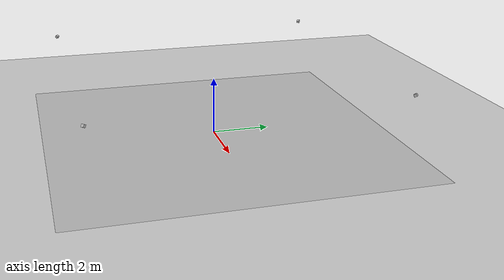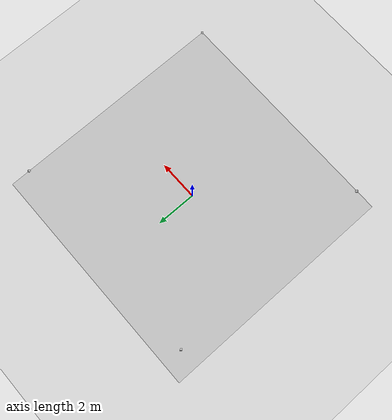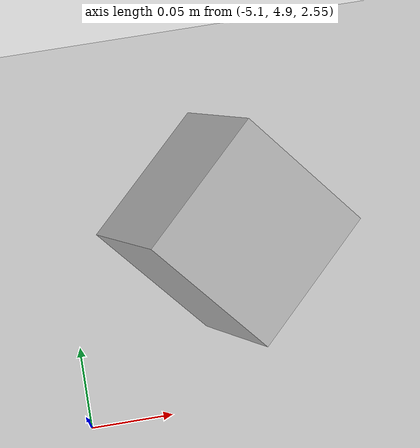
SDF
<sdf version="1.7">
 <world name="default">
  <plugin name="ros_interface_plugin" filename="librotors_gazebo_ros_interface_plugin.so"/>
  <light name="sun" type="directional">
   <pose>0 0 10 0 -0 0</pose>
   <diffuse>0.8 0.8 0.8 1</diffuse>
   <specular>0.2 0.2 0.2 1</specular>
   <attenuation>
    <range>1000</range>
    <constant>0.9</constant>
    <linear>0.01</linear>
    <quadratic>0.001</quadratic>
   </attenuation>
   <direction>-0.5 0.1 -0.9</direction>
   <spot><inner_angle>0</inner_angle><outer_angle>0</outer_angle><falloff>0</falloff></spot>
  </light>
  <model name="ground_plane">
   <static>1</static>
   <link name="link">
    <collision name="collision">
     <geometry><plane><normal>0 0 1</normal><size>100 100</size></plane></geometry>
     <surface>
      <contact><collide_bitmask>65535</collide_bitmask></contact>
      <friction><ode><mu>100</mu><mu2>50</mu2></ode></friction>
     </surface>
    </collision>
    <visual name="visual">
     <cast_shadows>0</cast_shadows>
     <geometry><plane><normal>0 0 1</normal><size>100 100</size></plane></geometry>
     <material>
      <script><uri>file://media/materials/scripts/gazebo.material</uri><name>Gazebo/Grey</name></script>
     </material>
    </visual>
   </link>
  </model>
  <gravity>0 0 -9.8</gravity>
  <magnetic_field>6e-06 2.3e-05 -4.2e-05</magnetic_field>
  <atmosphere type="adiabatic"/>
  <physics type="ode">
   <max_step_size>0.001</max_step_size>
   <real_time_factor>1</real_time_factor>
   <real_time_update_rate>1000</real_time_update_rate>
  </physics>
  <scene><ambient>0.4 0.4 0.4 1</ambient><background>0.7 0.7 0.7 1</background><shadows>1</shadows></scene>
  <spherical_coordinates>
   <surface_model>EARTH_WGS84</surface_model>
   <latitude_deg>0</latitude_deg>
   <longitude_deg>0</longitude_deg>
   <elevation>0</elevation>
   <heading_deg>0</heading_deg>
  </spherical_coordinates>
  <model name="Tatame_eRobotica">
   <model name="Tatame_model">
    <static>1</static>
    <pose>0.004587 -0.003549 0.019779 3.14159 0.001283 3.14159</pose>
    <link name="Tatame_link">
     <visual name="floor">
      <pose>-5 -5 0.01 0 -0 0</pose>
      <cast_shadows>0</cast_shadows>
      <geometry><mesh><uri>model://Tatame_eRobotica/Tatame.dae</uri></mesh></geometry>
     </visual>
     <collision name="floor_collision"><geometry><box><size>10 10 0.02</size></box></geometry></collision>
    </link>
   </model>
   <static>0</static>
   <pose>1.02437 -0.98355 0.001314 0 -0 0</pose>
  </model>
  <model name="camera1">
   <pose>-5 -5 2.6 0 0.523598776 0.785398163</pose>
   <link name="link">
    <gravity>0</gravity>
    <inertial>
     <mass>0.1</mass>
     <inertia><ixx>0.000166667</ixx><iyy>0.000166667</iyy><izz>0.000166667</izz></inertia>
    </inertial>
    <collision name="collision"><geometry><box><size>0.095 0.095 0.09</size></box></geometry></collision>
    <visual name="visual"><geometry><box><size>0.095 0.095 0.09</size></box></geometry></visual>
    <sensor name="camera" type="camera">
     <camera>
      <horizontal_fov>1.047</horizontal_fov>
      <image><width>1920</width><height>1080</height></image>
      <clip><near>0.1</near><far>100</far></clip>
     </camera>
     <plugin name="camera" filename="libgazebo_ros_camera.so">
      <alwaysOn>true</alwaysOn>
      <updateRate>0.0</updateRate>
      <cameraName>im_cam/camera1</cameraName>
      <imageTopicName>image_raw</imageTopicName>
      <cameraInfoTopicName>camera_info</cameraInfoTopicName>
      <frameName>camera</frameName>
      <hackBaseline>0.07</hackBaseline>
      <distortionK1>0.0</distortionK1>
      <distortionK2>0.0</distortionK2>
      <distortionK3>0.0</distortionK3>
      <distortionT1>0.0</distortionT1>
      <distortionT2>0.0</distortionT2>
     </plugin>
     <always_on>1</always_on>
     <update_rate>30</update_rate>
     <visualize>true</visualize>
    </sensor>
   </link>
  </model>
  <model name="camera2">
   <pose>-5 5 2.6 0 0.523598776 -0.785398163</pose>
   <link name="link">
    <gravity>0</gravity>
    <inertial>
     <mass>0.1</mass>
     <inertia><ixx>0.000166667</ixx><iyy>0.000166667</iyy><izz>0.000166667</izz></inertia>
    </inertial>
    <collision name="collision"><geometry><box><size>0.095 0.095 0.09</size></box></geometry></collision>
    <visual name="visual"><geometry><box><size>0.095 0.095 0.09</size></box></geometry></visual>
    <sensor name="camera" type="camera">
     <camera>
      <horizontal_fov>1.047</horizontal_fov>
      <image><width>1920</width><height>1080</height></image>
      <clip><near>0.1</near><far>100</far></clip>
     </camera>
     <plugin name="camera" filename="libgazebo_ros_camera.so">
      <alwaysOn>true</alwaysOn>
      <updateRate>0.0</updateRate>
      <cameraName>im_cam/camera2</cameraName>
      <imageTopicName>image_raw</imageTopicName>
      <cameraInfoTopicName>camera_info</cameraInfoTopicName>
      <frameName>camera</frameName>
      <hackBaseline>0.07</hackBaseline>
      <distortionK1>0.0</distortionK1>
      <distortionK2>0.0</distortionK2>
      <distortionK3>0.0</distortionK3>
      <distortionT1>0.0</distortionT1>
      <distortionT2>0.0</distortionT2>
     </plugin>
     <always_on>1</always_on>
     <update_rate>30</update_rate>
     <visualize>true</visualize>
    </sensor>
   </link>
  </model>
  <model name="camera3">
   <pose>5 5 2.6 0 0.523598776 -2.35619449</pose>
   <link name="link">
    <gravity>0</gravity>
    <inertial>
     <mass>0.1</mass>
     <inertia><ixx>0.000166667</ixx><iyy>0.000166667</iyy><izz>0.000166667</izz></inertia>
    </inertial>
    <collision name="collision"><geometry><box><size>0.095 0.095 0.09</size></box></geometry></collision>
    <visual name="visual"><geometry><box><size>0.095 0.095 0.09</size></box></geometry></visual>
    <sensor name="camera" type="camera">
     <camera>
      <horizontal_fov>1.047</horizontal_fov>
      <image><width>1920</width><height>1080</height></image>
      <clip><near>0.1</near><far>100</far></clip>
     </camera>
     <plugin name="camera" filename="libgazebo_ros_camera.so">
      <alwaysOn>true</alwaysOn>
      <updateRate>0.0</updateRate>
      <cameraName>im_cam/camera3</cameraName>
      <imageTopicName>image_raw</imageTopicName>
      <cameraInfoTopicName>camera_info</cameraInfoTopicName>
      <frameName>camera</frameName>
      <hackBaseline>0.07</hackBaseline>
      <distortionK1>0.0</distortionK1>
      <distortionK2>0.0</distortionK2>
      <distortionK3>0.0</distortionK3>
      <distortionT1>0.0</distortionT1>
      <distortionT2>0.0</distortionT2>
     </plugin>
     <always_on>1</always_on>
     <update_rate>30</update_rate>
     <visualize>true</visualize>
    </sensor>
   </link>
  </model>
  <model name="camera4">
   <pose>5 -5 2.6 0 0.523598776 2.35619449</pose>
   <link name="link">
    <gravity>0</gravity>
    <inertial>
     <mass>0.1</mass>
     <inertia><ixx>0.000166667</ixx><iyy>0.000166667</iyy><izz>0.000166667</izz></inertia>
    </inertial>
    <collision name="collision"><geometry><box><size>0.095 0.095 0.09</size></box></geometry></collision>
    <visual name="visual"><geometry><box><size>0.095 0.095 0.09</size></box></geometry></visual>
    <sensor name="camera" type="camera">
     <camera>
      <horizontal_fov>1.047</horizontal_fov>
      <image><width>1920</width><height>1080</height></image>
      <clip><near>0.1</near><far>100</far></clip>
     </camera>
     <plugin name="camera" filename="libgazebo_ros_camera.so">
      <alwaysOn>true</alwaysOn>
      <updateRate>0.0</updateRate>
      <cameraName>im_cam/camera4</cameraName>
      <imageTopicName>image_raw</imageTopicName>
      <cameraInfoTopicName>camera_info</cameraInfoTopicName>
      <frameName>camera</frameName>
      <hackBaseline>0.07</hackBaseline>
      <distortionK1>0.0</distortionK1>
      <distortionK2>0.0</distortionK2>
      <distortionK3>0.0</distortionK3>
      <distortionT1>0.0</distortionT1>
      <distortionT2>0.0</distortionT2>
     </plugin>
     <always_on>1</always_on>
     <update_rate>30</update_rate>
     <visualize>true</visualize>
    </sensor>
   </link>
  </model>
 </world>
</sdf>
